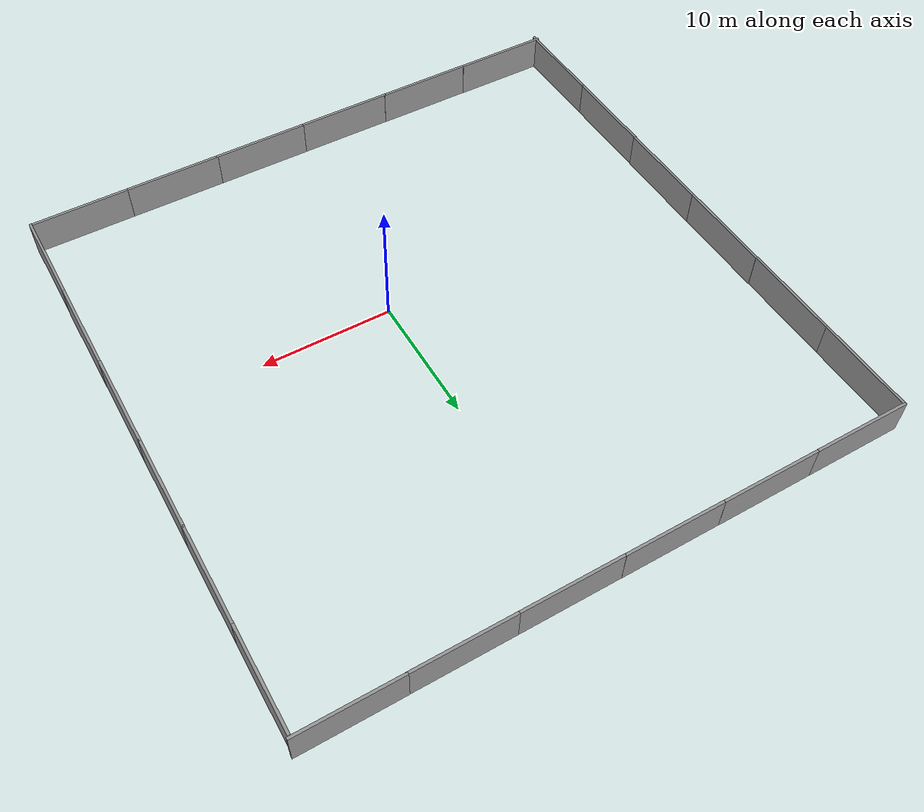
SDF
<sdf version="1.7">
 <world name="default">
  <scene><background>202 150 66 1</background><ambient>0.4 0.4 0.4 1</ambient><shadows>1</shadows></scene>
  <light name="directional_light_1" type="directional">
   <pose>0 20 20 0.1 0.1 0</pose>
   <diffuse>1 1 1 1</diffuse>
   <specular>1 1 1 1</specular>
   <attenuation><range>300</range></attenuation>
   <direction>0.1 0.1 -1</direction>
   <cast_shadows>0</cast_shadows>
   <spot><inner_angle>0</inner_angle><outer_angle>0</outer_angle><falloff>0</falloff></spot>
  </light>
  <light name="sun" type="directional">
   <pose>0 0 10 0 -0 0</pose>
   <diffuse>0.8 0.8 0.8 1</diffuse>
   <specular>0.2 0.2 0.2 1</specular>
   <attenuation>
    <range>1000</range>
    <constant>0.9</constant>
    <linear>0.01</linear>
    <quadratic>0.001</quadratic>
   </attenuation>
   <direction>-0.5 0.1 -0.9</direction>
   <spot><inner_angle>0</inner_angle><outer_angle>0</outer_angle><falloff>0</falloff></spot>
  </light>
  <gravity>0 0 -9.8</gravity>
  <magnetic_field>6e-06 2.3e-05 -4.2e-05</magnetic_field>
  <atmosphere type="adiabatic"/>
  <physics type="ode">
   <max_step_size>0.001</max_step_size>
   <real_time_factor>1</real_time_factor>
   <real_time_update_rate>1000</real_time_update_rate>
  </physics>
  <spherical_coordinates>
   <surface_model>EARTH_WGS84</surface_model>
   <latitude_deg>0</latitude_deg>
   <longitude_deg>0</longitude_deg>
   <elevation>0</elevation>
   <heading_deg>0</heading_deg>
  </spherical_coordinates>
  <model name="grey_wall">
   <static>1</static>
   <link name="link">
    <pose>0 0 1.4 0 -0 0</pose>
    <collision name="collision"><geometry><box><size>7.5 0.2 2.8</size></box></geometry></collision>
    <visual name="visual">
     <cast_shadows>0</cast_shadows>
     <geometry><box><size>7.5 0.2 2.8</size></box></geometry>
     <material>
      <script>
       <uri>model://grey_wall/materials/scripts</uri>
       <uri>model://grey_wall/materials/textures</uri>
       <name>vrc/grey_wall</name>
      </script>
     </material>
    </visual>
   </link>
   <pose>16.3095 -18.4471 0 0 -0 0</pose>
  </model>
  <model name="grey_wall_clone">
   <static>1</static>
   <link name="link">
    <pose>0 0 1.4 0 -0 0</pose>
    <collision name="collision"><geometry><box><size>7.5 0.2 2.8</size></box></geometry></collision>
    <visual name="visual">
     <cast_shadows>0</cast_shadows>
     <geometry><box><size>7.5 0.2 2.8</size></box></geometry>
     <material>
      <script>
       <uri>model://grey_wall/materials/scripts</uri>
       <uri>model://grey_wall/materials/textures</uri>
       <name>vrc/grey_wall</name>
      </script>
     </material>
    </visual>
   </link>
   <pose>8.89158 -18.4483 0 0 -0 0</pose>
  </model>
  <model name="grey_wall_clone_0">
   <static>1</static>
   <link name="link">
    <pose>0 0 1.4 0 -0 0</pose>
    <collision name="collision"><geometry><box><size>7.5 0.2 2.8</size></box></geometry></collision>
    <visual name="visual">
     <cast_shadows>0</cast_shadows>
     <geometry><box><size>7.5 0.2 2.8</size></box></geometry>
     <material>
      <script>
       <uri>model://grey_wall/materials/scripts</uri>
       <uri>model://grey_wall/materials/textures</uri>
       <name>vrc/grey_wall</name>
      </script>
     </material>
    </visual>
   </link>
   <pose>1.51809 -18.4518 0 0 -0 0</pose>
  </model>
  <model name="grey_wall_clone_1">
   <static>1</static>
   <link name="link">
    <pose>0 0 1.4 0 -0 0</pose>
    <collision name="collision"><geometry><box><size>7.5 0.2 2.8</size></box></geometry></collision>
    <visual name="visual">
     <cast_shadows>0</cast_shadows>
     <geometry><box><size>7.5 0.2 2.8</size></box></geometry>
     <material>
      <script>
       <uri>model://grey_wall/materials/scripts</uri>
       <uri>model://grey_wall/materials/textures</uri>
       <name>vrc/grey_wall</name>
      </script>
     </material>
    </visual>
   </link>
   <pose>-5.93495 -18.4618 0 0 -0 0</pose>
  </model>
  <model name="grey_wall_clone_2">
   <static>1</static>
   <link name="link">
    <pose>0 0 1.4 0 -0 0</pose>
    <collision name="collision"><geometry><box><size>7.5 0.2 2.8</size></box></geometry></collision>
    <visual name="visual">
     <cast_shadows>0</cast_shadows>
     <geometry><box><size>7.5 0.2 2.8</size></box></geometry>
     <material>
      <script>
       <uri>model://grey_wall/materials/scripts</uri>
       <uri>model://grey_wall/materials/textures</uri>
       <name>vrc/grey_wall</name>
      </script>
     </material>
    </visual>
   </link>
   <pose>-13.3054 -18.4504 0 0 -0 0</pose>
  </model>
  <model name="grey_wall_clone_3">
   <static>1</static>
   <link name="link">
    <pose>0 0 1.4 0 -0 0</pose>
    <collision name="collision"><geometry><box><size>7.5 0.2 2.8</size></box></geometry></collision>
    <visual name="visual">
     <cast_shadows>0</cast_shadows>
     <geometry><box><size>7.5 0.2 2.8</size></box></geometry>
     <material>
      <script>
       <uri>model://grey_wall/materials/scripts</uri>
       <uri>model://grey_wall/materials/textures</uri>
       <name>vrc/grey_wall</name>
      </script>
     </material>
    </visual>
   </link>
   <pose>-20.7698 -18.4309 0 0 -0 0</pose>
  </model>
  <model name="grey_wall_clone_4">
   <static>1</static>
   <link name="link">
    <pose>0 0 1.4 0 -0 0</pose>
    <collision name="collision"><geometry><box><size>7.5 0.2 2.8</size></box></geometry></collision>
    <visual name="visual">
     <cast_shadows>0</cast_shadows>
     <geometry><box><size>7.5 0.2 2.8</size></box></geometry>
     <material>
      <script>
       <uri>model://grey_wall/materials/scripts</uri>
       <uri>model://grey_wall/materials/textures</uri>
       <name>vrc/grey_wall</name>
      </script>
     </material>
    </visual>
   </link>
   <pose>-20.9529 25.8415 0 0 -0 0</pose>
  </model>
  <model name="grey_wall_clone_5">
   <static>1</static>
   <link name="link">
    <pose>0 0 1.4 0 -0 0</pose>
    <collision name="collision"><geometry><box><size>7.5 0.2 2.8</size></box></geometry></collision>
    <visual name="visual">
     <cast_shadows>0</cast_shadows>
     <geometry><box><size>7.5 0.2 2.8</size></box></geometry>
     <material>
      <script>
       <uri>model://grey_wall/materials/scripts</uri>
       <uri>model://grey_wall/materials/textures</uri>
       <name>vrc/grey_wall</name>
      </script>
     </material>
    </visual>
   </link>
   <pose>-13.5042 25.8412 0 0 -0 0</pose>
  </model>
  <model name="grey_wall_clone_6">
   <static>1</static>
   <link name="link">
    <pose>0 0 1.4 0 -0 0</pose>
    <collision name="collision"><geometry><box><size>7.5 0.2 2.8</size></box></geometry></collision>
    <visual name="visual">
     <cast_shadows>0</cast_shadows>
     <geometry><box><size>7.5 0.2 2.8</size></box></geometry>
     <material>
      <script>
       <uri>model://grey_wall/materials/scripts</uri>
       <uri>model://grey_wall/materials/textures</uri>
       <name>vrc/grey_wall</name>
      </script>
     </material>
    </visual>
   </link>
   <pose>-6.03809 25.8323 0 0 -0 0</pose>
  </model>
  <model name="grey_wall_clone_7">
   <static>1</static>
   <link name="link">
    <pose>0 0 1.4 0 -0 0</pose>
    <collision name="collision"><geometry><box><size>7.5 0.2 2.8</size></box></geometry></collision>
    <visual name="visual">
     <cast_shadows>0</cast_shadows>
     <geometry><box><size>7.5 0.2 2.8</size></box></geometry>
     <material>
      <script>
       <uri>model://grey_wall/materials/scripts</uri>
       <uri>model://grey_wall/materials/textures</uri>
       <name>vrc/grey_wall</name>
      </script>
     </material>
    </visual>
   </link>
   <pose>1.45076 25.8231 0 0 -0 0</pose>
  </model>
  <model name="grey_wall_clone_8">
   <static>1</static>
   <link name="link">
    <pose>0 0 1.4 0 -0 0</pose>
    <collision name="collision"><geometry><box><size>7.5 0.2 2.8</size></box></geometry></collision>
    <visual name="visual">
     <cast_shadows>0</cast_shadows>
     <geometry><box><size>7.5 0.2 2.8</size></box></geometry>
     <material>
      <script>
       <uri>model://grey_wall/materials/scripts</uri>
       <uri>model://grey_wall/materials/textures</uri>
       <name>vrc/grey_wall</name>
      </script>
     </material>
    </visual>
   </link>
   <pose>8.9352 25.8236 0 0 -0 0</pose>
  </model>
  <model name="grey_wall_clone_9">
   <static>1</static>
   <link name="link">
    <pose>0 0 1.4 0 -0 0</pose>
    <collision name="collision"><geometry><box><size>7.5 0.2 2.8</size></box></geometry></collision>
    <visual name="visual">
     <cast_shadows>0</cast_shadows>
     <geometry><box><size>7.5 0.2 2.8</size></box></geometry>
     <material>
      <script>
       <uri>model://grey_wall/materials/scripts</uri>
       <uri>model://grey_wall/materials/textures</uri>
       <name>vrc/grey_wall</name>
      </script>
     </material>
    </visual>
   </link>
   <pose>16.3022 25.8313 0 0 -0 0</pose>
  </model>
  <model name="grey_wall_clone_10">
   <static>1</static>
   <link name="link">
    <pose>0 0 1.4 0 -0 0</pose>
    <collision name="collision"><geometry><box><size>7.5 0.2 2.8</size></box></geometry></collision>
    <visual name="visual">
     <cast_shadows>0</cast_shadows>
     <geometry><box><size>7.5 0.2 2.8</size></box></geometry>
     <material>
      <script>
       <uri>model://grey_wall/materials/scripts</uri>
       <uri>model://grey_wall/materials/textures</uri>
       <name>vrc/grey_wall</name>
      </script>
     </material>
    </visual>
   </link>
   <pose>20.0817 -14.8156 0 0 -0 1.577</pose>
  </model>
  <model name="grey_wall_clone_10_clone">
   <static>1</static>
   <link name="link">
    <pose>0 0 1.4 0 -0 0</pose>
    <collision name="collision"><geometry><box><size>7.5 0.2 2.8</size></box></geometry></collision>
    <visual name="visual">
     <cast_shadows>0</cast_shadows>
     <geometry><box><size>7.5 0.2 2.8</size></box></geometry>
     <material>
      <script>
       <uri>model://grey_wall/materials/scripts</uri>
       <uri>model://grey_wall/materials/textures</uri>
       <name>vrc/grey_wall</name>
      </script>
     </material>
    </visual>
   </link>
   <pose>20.0537 -7.43981 0 0 -0 1.577</pose>
  </model>
  <model name="grey_wall_clone_10_clone_0">
   <static>1</static>
   <link name="link">
    <pose>0 0 1.4 0 -0 0</pose>
    <collision name="collision"><geometry><box><size>7.5 0.2 2.8</size></box></geometry></collision>
    <visual name="visual">
     <cast_shadows>0</cast_shadows>
     <geometry><box><size>7.5 0.2 2.8</size></box></geometry>
     <material>
      <script>
       <uri>model://grey_wall/materials/scripts</uri>
       <uri>model://grey_wall/materials/textures</uri>
       <name>vrc/grey_wall</name>
      </script>
     </material>
    </visual>
   </link>
   <pose>19.997 -0.072443 0 0 -0 1.577</pose>
  </model>
  <model name="grey_wall_clone_10_clone_1">
   <static>1</static>
   <link name="link">
    <pose>0 0 1.4 0 -0 0</pose>
    <collision name="collision"><geometry><box><size>7.5 0.2 2.8</size></box></geometry></collision>
    <visual name="visual">
     <cast_shadows>0</cast_shadows>
     <geometry><box><size>7.5 0.2 2.8</size></box></geometry>
     <material>
      <script>
       <uri>model://grey_wall/materials/scripts</uri>
       <uri>model://grey_wall/materials/textures</uri>
       <name>vrc/grey_wall</name>
      </script>
     </material>
    </visual>
   </link>
   <pose>19.9525 7.19677 0 0 -0 1.577</pose>
  </model>
  <model name="grey_wall_clone_10_clone_2">
   <static>1</static>
   <link name="link">
    <pose>0 0 1.4 0 -0 0</pose>
    <collision name="collision"><geometry><box><size>7.5 0.2 2.8</size></box></geometry></collision>
    <visual name="visual">
     <cast_shadows>0</cast_shadows>
     <geometry><box><size>7.5 0.2 2.8</size></box></geometry>
     <material>
      <script>
       <uri>model://grey_wall/materials/scripts</uri>
       <uri>model://grey_wall/materials/textures</uri>
       <name>vrc/grey_wall</name>
      </script>
     </material>
    </visual>
   </link>
   <pose>19.9145 14.5086 0 0 -0 1.577</pose>
  </model>
  <model name="grey_wall_clone_10_clone_3">
   <static>1</static>
   <link name="link">
    <pose>0 0 1.4 0 -0 0</pose>
    <collision name="collision"><geometry><box><size>7.5 0.2 2.8</size></box></geometry></collision>
    <visual name="visual">
     <cast_shadows>0</cast_shadows>
     <geometry><box><size>7.5 0.2 2.8</size></box></geometry>
     <material>
      <script>
       <uri>model://grey_wall/materials/scripts</uri>
       <uri>model://grey_wall/materials/textures</uri>
       <name>vrc/grey_wall</name>
      </script>
     </material>
    </visual>
   </link>
   <pose>19.8695 21.9587 0 0 -0 1.577</pose>
  </model>
  <model name="grey_wall_clone_10_clone_4">
   <static>1</static>
   <link name="link">
    <pose>0 0 1.4 0 -0 0</pose>
    <collision name="collision"><geometry><box><size>7.5 0.2 2.8</size></box></geometry></collision>
    <visual name="visual">
     <cast_shadows>0</cast_shadows>
     <geometry><box><size>7.5 0.2 2.8</size></box></geometry>
     <material>
      <script>
       <uri>model://grey_wall/materials/scripts</uri>
       <uri>model://grey_wall/materials/textures</uri>
       <name>vrc/grey_wall</name>
      </script>
     </material>
    </visual>
   </link>
   <pose>-24.57 22.0294 0 0 -0 1.577</pose>
  </model>
  <model name="grey_wall_clone_10_clone_5">
   <static>1</static>
   <link name="link">
    <pose>0 0 1.4 0 -0 0</pose>
    <collision name="collision"><geometry><box><size>7.5 0.2 2.8</size></box></geometry></collision>
    <visual name="visual">
     <cast_shadows>0</cast_shadows>
     <geometry><box><size>7.5 0.2 2.8</size></box></geometry>
     <material>
      <script>
       <uri>model://grey_wall/materials/scripts</uri>
       <uri>model://grey_wall/materials/textures</uri>
       <name>vrc/grey_wall</name>
      </script>
     </material>
    </visual>
   </link>
   <pose>-24.5203 14.5693 0 0 -0 1.577</pose>
  </model>
  <model name="grey_wall_clone_10_clone_6">
   <static>1</static>
   <link name="link">
    <pose>0 0 1.4 0 -0 0</pose>
    <collision name="collision"><geometry><box><size>7.5 0.2 2.8</size></box></geometry></collision>
    <visual name="visual">
     <cast_shadows>0</cast_shadows>
     <geometry><box><size>7.5 0.2 2.8</size></box></geometry>
     <material>
      <script>
       <uri>model://grey_wall/materials/scripts</uri>
       <uri>model://grey_wall/materials/textures</uri>
       <name>vrc/grey_wall</name>
      </script>
     </material>
    </visual>
   </link>
   <pose>-24.4459 7.08844 0 0 -0 1.577</pose>
  </model>
  <model name="grey_wall_clone_10_clone_7">
   <static>1</static>
   <link name="link">
    <pose>0 0 1.4 0 -0 0</pose>
    <collision name="collision"><geometry><box><size>7.5 0.2 2.8</size></box></geometry></collision>
    <visual name="visual">
     <cast_shadows>0</cast_shadows>
     <geometry><box><size>7.5 0.2 2.8</size></box></geometry>
     <material>
      <script>
       <uri>model://grey_wall/materials/scripts</uri>
       <uri>model://grey_wall/materials/textures</uri>
       <name>vrc/grey_wall</name>
      </script>
     </material>
    </visual>
   </link>
   <pose>-24.388 -0.356328 0 0 -0 1.577</pose>
  </model>
  <model name="grey_wall_clone_10_clone_8">
   <static>1</static>
   <link name="link">
    <pose>0 0 1.4 0 -0 0</pose>
    <collision name="collision"><geometry><box><size>7.5 0.2 2.8</size></box></geometry></collision>
    <visual name="visual">
     <cast_shadows>0</cast_shadows>
     <geometry><box><size>7.5 0.2 2.8</size></box></geometry>
     <material>
      <script>
       <uri>model://grey_wall/materials/scripts</uri>
       <uri>model://grey_wall/materials/textures</uri>
       <name>vrc/grey_wall</name>
      </script>
     </material>
    </visual>
   </link>
   <pose>-24.3653 -7.71315 0 0 -0 1.577</pose>
  </model>
  <model name="grey_wall_clone_10_clone_9">
   <static>1</static>
   <link name="link">
    <pose>0 0 1.4 0 -0 0</pose>
    <collision name="collision"><geometry><box><size>7.5 0.2 2.8</size></box></geometry></collision>
    <visual name="visual">
     <cast_shadows>0</cast_shadows>
     <geometry><box><size>7.5 0.2 2.8</size></box></geometry>
     <material>
      <script>
       <uri>model://grey_wall/materials/scripts</uri>
       <uri>model://grey_wall/materials/textures</uri>
       <name>vrc/grey_wall</name>
      </script>
     </material>
    </visual>
   </link>
   <pose>-24.3183 -15.0555 0 0 -0 1.577</pose>
  </model>
 </world>
</sdf>
